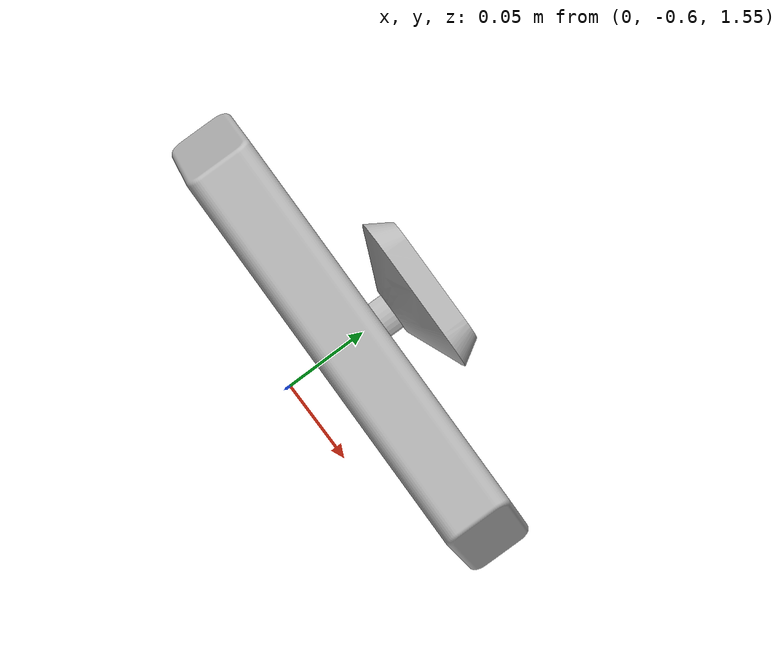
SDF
<sdf version="1.7">
 <world name="base">
  <plugin name="ros_link_attacher_plugin" filename="libgazebo_ros_link_attacher.so"/>
  <gravity>0 0 -9.81</gravity>
  <physics name="default_physics" default="0" type="ode">
   <max_step_size>0.001</max_step_size>
   <real_time_factor>1</real_time_factor>
   <real_time_update_rate>1000</real_time_update_rate>
  </physics>
  <scene><ambient>0.4 0.4 0.4 1</ambient><background>0.7 0.7 0.7 1</background><shadows>1</shadows></scene>
  <light name="sun" type="directional">
   <cast_shadows>0</cast_shadows>
   <pose>0 0 10 0 -0 0</pose>
   <diffuse>0.8 0.8 0.8 1</diffuse>
   <specular>0.2 0.2 0.2 1</specular>
   <attenuation>
    <range>1000</range>
    <constant>0.9</constant>
    <linear>0.01</linear>
    <quadratic>0.001</quadratic>
   </attenuation>
   <direction>-0.5 0.1 -0.9</direction>
   <spot><inner_angle>0</inner_angle><outer_angle>0</outer_angle><falloff>0</falloff></spot>
  </light>
  <model name="ground_plane">
   <static>1</static>
   <link name="link">
    <collision name="collision">
     <geometry><plane><normal>0 0 1</normal><size>100 100</size></plane></geometry>
     <surface>
      <contact><collide_bitmask>65535</collide_bitmask></contact>
      <friction><ode><mu>100</mu><mu2>50</mu2></ode></friction>
     </surface>
    </collision>
    <visual name="visual">
     <cast_shadows>0</cast_shadows>
     <geometry><plane><normal>0 0 1</normal><size>100 100</size></plane></geometry>
     <material>
      <script><uri>file://media/materials/scripts/gazebo.material</uri><name>Gazebo/Grey</name></script>
     </material>
    </visual>
   </link>
  </model>
  <model name="kinect">
   <pose>0 -0.558 1.58 1.58 1.57079 0</pose>
   <link name="link">
    <visual name="visual"><geometry><mesh><uri>model://kinect/meshes/kinect.dae</uri></mesh></geometry></visual>
    <sensor name="camera" type="depth">
     <update_rate>20</update_rate>
     <camera>
      <horizontal_fov>1</horizontal_fov>
      <image><width>640</width><height>640</height><format>R8G8B8</format></image>
      <clip><near>0.05</near><far>3</far></clip>
     </camera>
     <plugin name="camera_plugin" filename="libgazebo_ros_openni_kinect.so">
      <baseline>0.2</baseline>
      <alwaysOn>1</alwaysOn>
      <updateRate>0.0</updateRate>
      <cameraName>camera_ir</cameraName>
      <imageTopicName>/camera/color/image_raw</imageTopicName>
      <cameraInfoTopicName>/camera/color/camera_info</cameraInfoTopicName>
      <depthImageTopicName>/camera/depth/image_raw</depthImageTopicName>
      <depthImageCameraInfoTopicName>/camera/depth/camera_info</depthImageCameraInfoTopicName>
      <pointCloudTopicName>/camera/depth/points</pointCloudTopicName>
      <frameName>camera_link</frameName>
      <pointCloudCutoff>0.5</pointCloudCutoff>
      <pointCloudCutoffMax>3.0</pointCloudCutoffMax>
      <distortionK1>0</distortionK1>
      <distortionK2>0</distortionK2>
      <distortionK3>0</distortionK3>
      <distortionT1>0</distortionT1>
      <distortionT2>0</distortionT2>
      <CxPrime>0</CxPrime>
      <Cx>0</Cx>
      <Cy>0</Cy>
      <focalLength>0</focalLength>
      <hackBaseline>0</hackBaseline>
     </plugin>
    </sensor>
   </link>
   <static>1</static>
  </model>
 </world>
</sdf>
